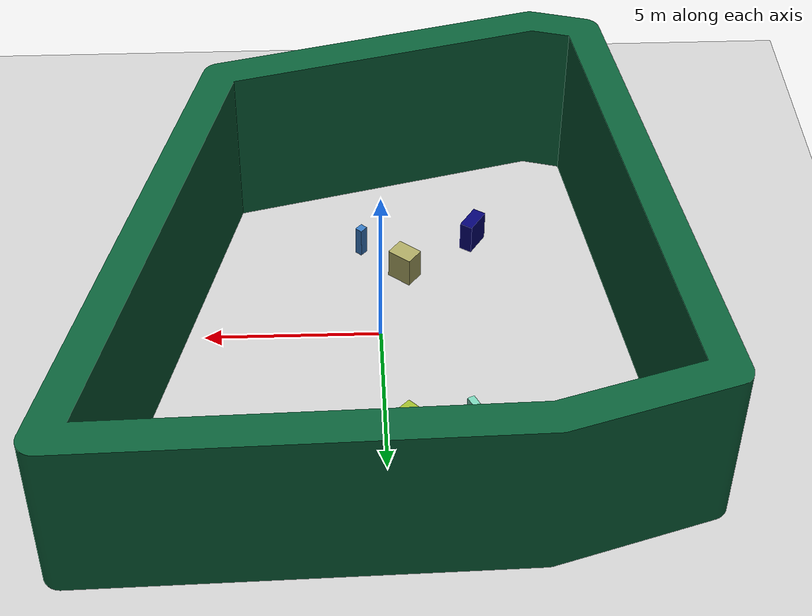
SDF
<?xml version="1.0" ?>
<sdf version="1.6">
  <world name="default">
    <atmosphere type="adiabatic"/>
    <gravity>0 0 -9.8</gravity>
    <model name="box">
      <allow_auto_disable>0</allow_auto_disable>
      <static>1</static>
      <pose frame="">-2.45382 3.70852 0.443287 0 0 -2.6938</pose>
      <link name="link">
        <kinematic>0</kinematic>
        <pose frame="">0 0 0 0 -0 0</pose>
        <gravity>1</gravity>
        <self_collide>0</self_collide>
        <collision name="collision">
          <geometry>
            <box>
              <size>0.207478 0.747208 0.886573</size>
            </box>
          </geometry>
          <max_contacts>20</max_contacts>
          <pose frame="">0 0 0 0 -0 0</pose>
        </collision>
        <visual name="visual">
          <geometry>
            <box>
              <size>0.207478 0.747208 0.886573</size>
            </box>
          </geometry>
          <material>
            <diffuse>0.470588235294 0.819607843137 0.713725490196 1</diffuse>
            <ambient>0.470588 0.819608 0.713725 1</ambient>
          </material>
          <cast_shadows>1</cast_shadows>
          <transparency>0.0</transparency>
          <pose frame="">0 0 0 0 -0 0</pose>
        </visual>
      </link>
      <self_collide>0</self_collide>
    </model>
    <model name="box_4">
      <allow_auto_disable>0</allow_auto_disable>
      <static>1</static>
      <pose frame="">-0.724257 3.65092 0.375446 0 0 -0.794008</pose>
      <link name="link">
        <kinematic>0</kinematic>
        <pose frame="">0 0 0 0 -0 0</pose>
        <gravity>1</gravity>
        <self_collide>0</self_collide>
        <collision name="collision">
          <geometry>
            <box>
              <size>0.623444 0.380361 0.750892</size>
            </box>
          </geometry>
          <max_contacts>20</max_contacts>
          <pose frame="">0 0 0 0 -0 0</pose>
        </collision>
        <visual name="visual">
          <geometry>
            <box>
              <size>0.623444 0.380361 0.750892</size>
            </box>
          </geometry>
          <material>
            <diffuse>0.61568627451 0.725490196078 0.172549019608 1</diffuse>
            <ambient>0.615686 0.72549 0.172549 1</ambient>
          </material>
          <cast_shadows>1</cast_shadows>
          <transparency>0.0</transparency>
          <pose frame="">0 0 0 0 -0 0</pose>
        </visual>
      </link>
      <self_collide>0</self_collide>
    </model>
    <model name="box_3">
      <allow_auto_disable>0</allow_auto_disable>
      <static>1</static>
      <pose frame="">-2.88719 -3.84223 0.470676 0 -0 0.981033</pose>
      <link name="link">
        <kinematic>0</kinematic>
        <pose frame="">0 0 0 0 -0 0</pose>
        <gravity>1</gravity>
        <self_collide>0</self_collide>
        <collision name="collision">
          <geometry>
            <box>
              <size>0.807433 0.388085 0.941351</size>
            </box>
          </geometry>
          <max_contacts>20</max_contacts>
          <pose frame="">0 0 0 0 -0 0</pose>
        </collision>
        <visual name="visual">
          <geometry>
            <box>
              <size>0.807433 0.388085 0.941351</size>
            </box>
          </geometry>
          <material>
            <diffuse>0.0156862745098 0.0078431372549 0.450980392157 1</diffuse>
            <ambient>0.0156863 0.00784314 0.45098 1</ambient>
          </material>
          <cast_shadows>1</cast_shadows>
          <transparency>0.0</transparency>
          <pose frame="">0 0 0 0 -0 0</pose>
        </visual>
      </link>
      <self_collide>0</self_collide>
    </model>
    <model name="box_2">
      <allow_auto_disable>0</allow_auto_disable>
      <static>1</static>
      <pose frame="">0.455639 -3.54095 0.467691 0 -0 2.40194</pose>
      <link name="link">
        <kinematic>0</kinematic>
        <pose frame="">0 0 0 0 -0 0</pose>
        <gravity>1</gravity>
        <self_collide>0</self_collide>
        <collision name="collision">
          <geometry>
            <box>
              <size>0.222995 0.257776 0.935382</size>
            </box>
          </geometry>
          <max_contacts>20</max_contacts>
          <pose frame="">0 0 0 0 -0 0</pose>
        </collision>
        <visual name="visual">
          <geometry>
            <box>
              <size>0.222995 0.257776 0.935382</size>
            </box>
          </geometry>
          <material>
            <diffuse>0.21568627451 0.470588235294 0.749019607843 1</diffuse>
            <ambient>0.215686 0.470588 0.74902 1</ambient>
          </material>
          <cast_shadows>1</cast_shadows>
          <transparency>0.0</transparency>
          <pose frame="">0 0 0 0 -0 0</pose>
        </visual>
      </link>
      <self_collide>0</self_collide>
    </model>
    <model name="box_1">
      <allow_auto_disable>0</allow_auto_disable>
      <static>1</static>
      <pose frame="">-0.787954 -2.46317 0.466042 0 0 -2.25123</pose>
      <link name="link">
        <kinematic>0</kinematic>
        <pose frame="">0 0 0 0 -0 0</pose>
        <gravity>1</gravity>
        <self_collide>0</self_collide>
        <collision name="collision">
          <geometry>
            <box>
              <size>0.564443 0.758349 0.932084</size>
            </box>
          </geometry>
          <max_contacts>20</max_contacts>
          <pose frame="">0 0 0 0 -0 0</pose>
        </collision>
        <visual name="visual">
          <geometry>
            <box>
              <size>0.564443 0.758349 0.932084</size>
            </box>
          </geometry>
          <material>
            <diffuse>0.666666666667 0.650980392157 0.38431372549 1</diffuse>
            <ambient>0.666667 0.65098 0.384314 1</ambient>
          </material>
          <cast_shadows>1</cast_shadows>
          <transparency>0.0</transparency>
          <pose frame="">0 0 0 0 -0 0</pose>
        </visual>
      </link>
      <self_collide>0</self_collide>
    </model>
    <include>
      <pose frame="">0 0 2.5 0 -0 0</pose>
      <static>1</static>
      <uri>model://pcg_walls_test_001_walls</uri>
      <name>pcg_walls_test_001_walls</name>
    </include>
    <include>
      <pose frame="">0 0 0 0 -0 0</pose>
      <static>1</static>
      <uri>model://ground_plane</uri>
      <name>ground_plane</name>
    </include>
    <include>
      <uri>model://ground_plane</uri>
    </include>
    <include>
      <uri>model://sun</uri>
    </include>
    <physics default="1" name="default_physics" type="ode">
      <real_time_update_rate>1000.0</real_time_update_rate>
      <real_time_factor>1.0</real_time_factor>
      <max_step_size>0.001</max_step_size>
      <max_contacts>20</max_contacts>
      <ode>
        <constraints>
          <cfm>0.0</cfm>
          <erp>0.2</erp>
          <contact_max_correcting_vel>100.0</contact_max_correcting_vel>
          <contact_surface_layer>0.001</contact_surface_layer>
        </constraints>
        <solver>
          <friction_model>pyramid_model</friction_model>
          <iters>50</iters>
          <use_dynamic_moi_rescaling>0</use_dynamic_moi_rescaling>
          <min_step_size>0.0001</min_step_size>
          <sor>1.3</sor>
          <precon_iters>0</precon_iters>
          <type>quick</type>
        </solver>
      </ode>
    </physics>
    <wind>
      <linear_velocity>0 0 0</linear_velocity>
    </wind>
  </world>
</sdf>

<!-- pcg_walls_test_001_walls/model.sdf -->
<sdf version="1.6">
  <model name="pcg_walls_test_001_walls">
    <allow_auto_disable>0</allow_auto_disable>
    <link name="mesh">
      <kinematic>0</kinematic>
      <pose frame="">0 0 0 0 -0 0</pose>
      <gravity>1</gravity>
      <self_collide>0</self_collide>
      <collision name="collision">
        <geometry>
          <mesh>
            <scale>1 1 1</scale>
            <uri>file:///home/ross/Projects/AIIA/risk_metric_maps/notebooks/teststl/meshes/pcg_walls_test_001_walls/meshes/VxxRdejytW.stl</uri>
          </mesh>
        </geometry>
        <max_contacts>20</max_contacts>
        <pose frame="">0.64343 -0.901918 -2.5 0 -0 0</pose>
      </collision>
      <visual name="visual">
        <geometry>
          <mesh>
            <scale>1 1 1</scale>
            <uri>file:///home/ross/Projects/AIIA/risk_metric_maps/notebooks/teststl/meshes/pcg_walls_test_001_walls/meshes/HPvLQoJhCV.stl</uri>
          </mesh>
        </geometry>
        <material>
          <diffuse>0.0392156862745 0.372549019608 0.219607843137 1</diffuse>
          <ambient>0.0392157 0.372549 0.219608 1</ambient>
        </material>
        <cast_shadows>1</cast_shadows>
        <transparency>0.0</transparency>
        <pose frame="">0.64343 -0.901918 -2.5 0 -0 0</pose>
      </visual>
    </link>
    <pose frame="">0 0 2.5 0 -0 0</pose>
    <static>1</static>
    <self_collide>0</self_collide>
  </model>
</sdf>
